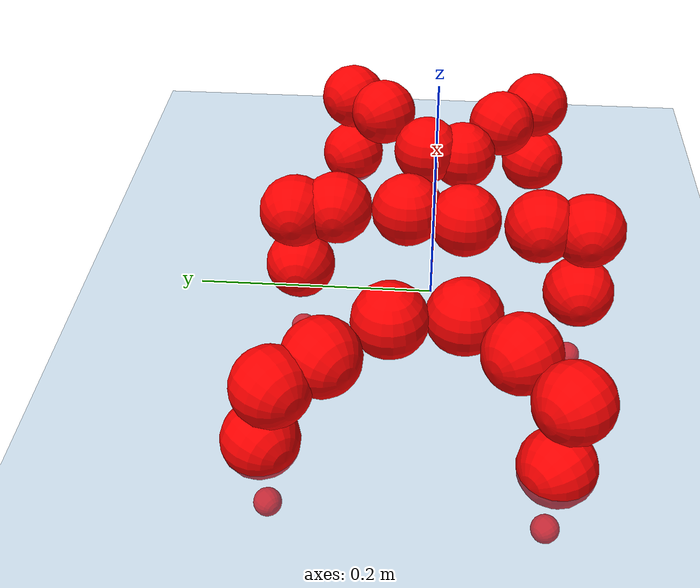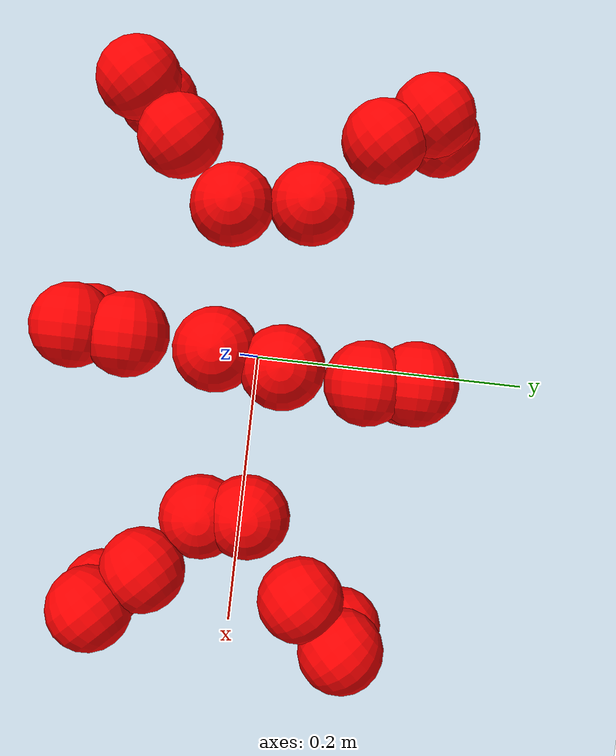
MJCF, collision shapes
<mujoco model="Golem">
  <compiler angle="radian" assetdir="assets" balanceinertia="true" inertiafromgeom="false"/>

  <option timestep="0.005" density="1.2" viscosity="2e-05"/>

  <size nkey="1"/>

  <visual>
    <quality shadowsize="8192"/>
    <map shadowclip="0.5"/>
  </visual>

  <default>
    <default class="/">
      <joint armature="0.01" damping="0.01" frictionloss="0.01"/>
      <geom contype="0" conaffinity="0" group="1" solref="-1000 -80"/>
      <site size="0.01 0.005 0.005" group="5"/>
      <general forcelimited="true" biastype="affine" gainprm="25" biasprm="0 -25 -0.5"/>
      <default class="visual">
        <geom type="mesh" group="2"/>
      </default>
      <default class="collision">
        <geom group="3"/>
      </default>
      <default class="foot">
        <geom size="0.01 0 0" condim="6" group="4" priority="1" solimp="0.015 1 0.01"/>
      </default>
      <default class="reward_collision_sphere">
        <geom group="5" rgba="1 0 0 1"/>
      </default>
    </default>
  </default>

  <asset>
    <texture type="skybox" colorspace="auto" name="//unnamed_texture_0" builtin="gradient" rgb1="0.95 0.95 0.95" rgb2="0.95 0.95 0.95" width="100" height="600"/>
    <texture type="2d" colorspace="auto" name="texplane" builtin="checker" rgb1="0.345 0.575 0.748" rgb2="0.345 0.575 0.748" markrgb="1 1 1" width="512" height="512"/>
    <material name="MatPlane" class="/" texture="texplane" texuniform="true" texrepeat="2 2" specular="0.9"/>
    <mesh name="body" class="/" file="body.stl" scale="0.001 0.001 0.001"/>
    <mesh name="coxa" class="/" file="coxa.stl" scale="0.001 0.001 0.001"/>
    <mesh name="femur" class="/" file="femur.stl" scale="0.001 0.001 0.001"/>
    <mesh name="tibia" class="/" file="tibia.stl" scale="0.001 0.001 0.001"/>
    <mesh name="tarsus" class="/" file="tarsus.stl" scale="0.001 0.001 0.001"/>
  </asset>

  <worldbody>
    <geom name="floor" class="/" size="100 100 0.125" type="plane" group="0" material="MatPlane"/>
    <light name="toplight_shadow" class="/" pos="0 0 5" dir="0.0990148 0.0990148 -0.990148" type="directional" ambient="0.04 0.04 0.04" diffuse="0.55 0.55 0.55" specular="0.12 0.12 0.12"/>
    <light name="toplight_fill" class="/" pos="0 0 5" dir="0.0990148 0.0990148 -0.990148" type="directional" castshadow="false" ambient="0.04 0.04 0.04" diffuse="0.3 0.3 0.3" specular="0.08 0.08 0.08"/>
    <body name="trunk" pos="-5.46234e-05 0.000140542 0.00085869" quat="0.99999 0.00354933 -0.00197408 -0.00202794">
      <inertial pos="0.000458065 -0.00213549 -0.00488367" quat="0.999996 0.000424153 -0.00163462 -0.00240304" mass="1.3572" diaginertia="0.00160905 0.000100762 0.0196538"/>
      <joint name="//unnamed_joint_0" type="free"/>
      <geom name="//unnamed_geom_1" class="/" pos="0 0 0.0732878" quat="1 0 0 0" type="mesh" rgba="0.9 0.9 0.9 1" mesh="body"/>
      <site name="imu" class="/" pos="0.0490817 0.0152302 0.118857" size="0.00744627"/>
      <camera name="track" class="/" pos="0 -0.790703 0" quat="0.707107 0.707107 0 0" mode="trackcom"/>
      <camera name="ego_camera" class="/" pos="0.0901429 0 0.114512" quat="-0.5 -0.5 0.5 0.5"/>
      <body name="coxa_RR" pos="-0.118019 -0.0409346 0.0670965" quat="0.379069 0.000913463 0.0019331 -0.925366">
        <inertial pos="0.00112807 -0.00192096 -0.00528613" quat="0.999813 0.00291818 0.018102 0.00609263" mass="0.0755476" diaginertia="0.00149212 9.14008e-05 0.0178698"/>
        <joint name="coxa_joint_RR" class="/" pos="0 0 0" axis="0.00905843 0.0068043 -0.999936" range="-3.02936 3.28778" armature="0.00721948" damping="0.00628655" frictionloss="0.00625984"/>
        <geom name="//unnamed_geom_2" class="/" type="mesh" rgba="0.2 0.2 0.2 1" mesh="coxa"/>
        <geom name="//unnamed_geom_3" class="reward_collision_sphere" size="0.0297851" pos="-0.0208022 0 0"/>
        <body name="femur_RR" pos="0.0376408 -0.000826225 0.00681862" quat="0.499966 -0.499439 0.500138 0.500456">
          <inertial pos="0.000717675 -0.00067937 -0.000853248" quat="0.999942 0.00918498 -0.00467899 -0.00313067" mass="0.0847754" diaginertia="0.00156697 9.37014e-05 0.0196969"/>
          <joint name="femur_joint_RR" class="/" pos="0 0 0" axis="-0.000750293 -0.0094525 -0.999955" stiffness="0.000956654" range="-3.28666 3.17542" armature="0.00996872" damping="0.017634" frictionloss="0.00741618"/>
          <geom name="//unnamed_geom_4" class="/" type="mesh" rgba="0.9 0.9 0.9 1" mesh="femur"/>
          <geom name="//unnamed_geom_5" class="reward_collision_sphere" size="0.0297851"/>
          <body name="tibia_RR" pos="0.00572084 -0.0512898 -0.00216277" quat="0.00219682 0.999997 -0.000681621 -0.000616415">
            <inertial pos="-0.00583065 -0.00277934 -0.000975966" quat="0.999942 0.00988069 0.00419236 -0.00101186" mass="0.0768439" diaginertia="0.00161118 9.68338e-05 0.0213095"/>
            <joint name="tibia_joint_RR" class="/" pos="0 0 0" axis="0.0276372 0.0271216 0.99925" range="-3.29515 3.17666" armature="0.0093812" damping="0.0283045" frictionloss="0.0068011"/>
            <geom name="//unnamed_geom_6" class="/" type="mesh" rgba="0.2 0.2 0.2 1" mesh="tibia"/>
            <geom name="//unnamed_geom_7" class="reward_collision_sphere" size="0.0297851"/>
            <body name="tarsus_RR" pos="0.0668792 -0.00176668 0.00339375" quat="1 0.000149077 -7.47542e-05 0.000272185">
              <inertial pos="0.0453023 0.000400651 0.00214641" quat="0.501712 0.494082 0.505944 0.498186" mass="0.0772042" diaginertia="0.00150881 9.68882e-05 0.0182197"/>
              <joint name="tarsus_joint_RR" class="/" pos="0 0 0" axis="0.00279823 -0.0305452 0.999529" range="-3.10252 3.10318" armature="0.00701887" damping="0" frictionloss="0.00800016"/>
              <geom name="//unnamed_geom_8" class="/" type="mesh" rgba="0.9 0.9 0.9 1" mesh="tarsus"/>
              <geom name="foot_1" class="foot" size="0.0073535" pos="0.0776616 0 0" quat="0 -0.707107 0 0.707107"/>
              <geom name="//unnamed_geom_10" class="reward_collision_sphere" size="0.0297851"/>
              <geom name="//unnamed_geom_11" class="reward_collision_sphere" size="0.0111694" pos="0.0745413 0 0"/>
              <site name="foot_1" class="foot" pos="0.0776616 0 0" quat="0 -0.707107 0 0.707107" size="0.00744627"/>
            </body>
          </body>
        </body>
      </body>
      <body name="coxa_RM" pos="-0.00164482 -0.0458784 0.0793679" quat="0.706231 0.00326366 0.00118058 -0.707973">
        <inertial pos="-0.00170481 0.00667386 -0.00038405" quat="0.999942 0.00842366 0.0062307 -0.00254163" mass="0.0889802" diaginertia="0.00175274 9.36305e-05 0.0191699"/>
        <joint name="coxa_joint_RM" class="/" pos="0 0 0" axis="-0.0268019 0.0193811 -0.999453" range="-3.14009 3.02001" armature="0.0044977" damping="0.032242" frictionloss="0.00914269"/>
        <geom name="//unnamed_geom_12" class="/" type="mesh" rgba="0.2 0.2 0.2 1" mesh="coxa"/>
        <geom name="//unnamed_geom_13" class="reward_collision_sphere" size="0.0297851" pos="-0.0208022 0 0"/>
        <body name="femur_RM" pos="0.0405824 -0.00303942 0.000511344" quat="0.500092 -0.500255 0.500086 0.499567">
          <inertial pos="-0.00368692 -0.000123808 0.00150331" quat="0.99999 0.00123974 -0.0030582 -0.0029526" mass="0.0760199" diaginertia="0.00165782 9.20848e-05 0.0187961"/>
          <joint name="femur_joint_RM" class="/" pos="0 0 0" axis="0.00137491 0.000719893 -0.999999" range="-3.09672 3.10153" armature="0.00686967" damping="0" frictionloss="0.00591437"/>
          <geom name="//unnamed_geom_14" class="/" type="mesh" rgba="0.9 0.9 0.9 1" mesh="femur"/>
          <geom name="//unnamed_geom_15" class="reward_collision_sphere" size="0.0297851"/>
          <body name="tibia_RM" pos="0.000346597 -0.0378819 -0.00204186" quat="-0.00034896 0.999999 0.000542846 -0.000821485">
            <inertial pos="-0.000838968 -0.00161248 0.00685747" quat="0.999501 -0.0116746 0.0284743 0.00706547" mass="0.0821556" diaginertia="0.0014899 0.000101286 0.0185993"/>
            <joint name="tibia_joint_RM" class="/" pos="0 0 0" axis="-0.00214085 -0.00013723 0.999998" range="-3.1111 3.1646" armature="0.00506143" damping="0" frictionloss="0.00423309"/>
            <geom name="//unnamed_geom_16" class="/" type="mesh" rgba="0.2 0.2 0.2 1" mesh="tibia"/>
            <geom name="//unnamed_geom_17" class="reward_collision_sphere" size="0.0297851"/>
            <body name="tarsus_RM" pos="0.06144 -0.000275054 0.00387106" quat="1 -0.00032546 0.000164018 -0.000144275">
              <inertial pos="0.0375082 0.000351977 -0.00113687" quat="0.498661 0.501208 0.485077 0.514614" mass="0.0836199" diaginertia="0.00155714 9.46867e-05 0.0205694"/>
              <joint name="tarsus_joint_RM" class="/" pos="0 0 0" axis="-0.00135597 -0.00117197 0.999998" range="-3.29607 3.09589" armature="0.00406626" damping="0" frictionloss="0.00821145"/>
              <geom name="//unnamed_geom_18" class="/" type="mesh" rgba="0.9 0.9 0.9 1" mesh="tarsus"/>
              <geom name="foot_2" class="foot" size="0.00536204" pos="0.0776616 0 0" quat="0 -0.707107 0 0.707107"/>
              <geom name="//unnamed_geom_20" class="reward_collision_sphere" size="0.0297851"/>
              <geom name="//unnamed_geom_21" class="reward_collision_sphere" size="0.0111694" pos="0.0745413 0 0"/>
              <site name="foot_2" class="foot" pos="0.0776616 0 0" quat="0 -0.707107 0 0.707107" size="0.00744627"/>
            </body>
          </body>
        </body>
      </body>
      <body name="coxa_RF" pos="0.130059 -0.0373484 0.0649725" quat="0.923705 -0.000407843 -0.000237101 -0.383105">
        <inertial pos="0.00497081 0.00928225 -0.00365628" quat="0.99974 -0.0105406 0.0202365 0.000304183" mass="0.0825634" diaginertia="0.00151764 9.83974e-05 0.0197397"/>
        <joint name="coxa_joint_RF" class="/" pos="0 0 0" axis="0.00100688 0.00188401 -0.999998" range="-3.11233 2.98905" armature="0.00861881" damping="0.00971838" frictionloss="0.00671262"/>
        <geom name="//unnamed_geom_22" class="/" type="mesh" rgba="0.2 0.2 0.2 1" mesh="coxa"/>
        <geom name="//unnamed_geom_23" class="reward_collision_sphere" size="0.0297851" pos="-0.0208022 0 0"/>
        <body name="femur_RF" pos="0.0320006 0.00332129 0.0108277" quat="0.502093 -0.499412 0.497412 0.50107">
          <inertial pos="0.000549451 0.00468759 -0.00735266" quat="0.999226 0.00915698 -0.0314333 0.021807" mass="0.0807355" diaginertia="0.00165343 0.000104894 0.0191596"/>
          <joint name="femur_joint_RF" class="/" pos="0 0 0" axis="-0.000358398 -0.00216894 -0.999998" stiffness="0.00484265" range="-3.22494 3.14105" armature="0.00766507" damping="0.016779" frictionloss="0.0101413"/>
          <geom name="//unnamed_geom_24" class="/" type="mesh" rgba="0.9 0.9 0.9 1" mesh="femur"/>
          <geom name="//unnamed_geom_25" class="reward_collision_sphere" size="0.0297851"/>
          <body name="tibia_RF" pos="-0.00379255 -0.0440783 -0.00219217" quat="-0.001827 0.999997 0.001488 4.47635e-05">
            <inertial pos="-0.00179131 -0.00261217 0.000819893" quat="0.999789 0.0182151 0.00384476 -0.00873871" mass="0.0811066" diaginertia="0.00157105 9.70116e-05 0.0193078"/>
            <joint name="tibia_joint_RF" class="/" pos="0 0 0" axis="-0.0307049 0.0131071 0.999443" range="-3.16222 3.11355" armature="0.00766871" damping="0.0212861" frictionloss="0.00745179"/>
            <geom name="//unnamed_geom_26" class="/" type="mesh" rgba="0.2 0.2 0.2 1" mesh="tibia"/>
            <geom name="//unnamed_geom_27" class="reward_collision_sphere" size="0.0297851"/>
            <body name="tarsus_RF" pos="0.0614913 0.00150432 0.00264008" quat="0.999994 -0.00265671 0.00221213 0.000921822">
              <inertial pos="0.0489191 0.00110558 -0.00893227" quat="0.481487 0.502798 0.499484 0.515636" mass="0.0936538" diaginertia="0.00159537 0.000103419 0.022138"/>
              <joint name="tarsus_joint_RF" class="/" pos="0 0 0" axis="0.0235977 0.031441 0.999227" range="-3.29781 3.15355" armature="0.00753879" damping="0" frictionloss="0.00592608"/>
              <geom name="//unnamed_geom_28" class="/" type="mesh" rgba="0.9 0.9 0.9 1" mesh="tarsus"/>
              <geom name="foot_3" class="foot" size="0.00748094" pos="0.0776616 0 0" quat="0 -0.707107 0 0.707107"/>
              <geom name="//unnamed_geom_30" class="reward_collision_sphere" size="0.0297851"/>
              <geom name="//unnamed_geom_31" class="reward_collision_sphere" size="0.0111694" pos="0.0745413 0 0"/>
              <site name="foot_3" class="foot" pos="0.0776616 0 0" quat="0 -0.707107 0 0.707107" size="0.00744627"/>
            </body>
          </body>
        </body>
      </body>
      <body name="coxa_LR" pos="-0.124755 0.0434233 0.0659827" quat="0.382986 -0.00140587 0.00344399 0.923747">
        <inertial pos="-0.0068774 0.00177009 0.00345229" quat="0.999657 -0.00234857 -0.0191322 0.017719" mass="0.0813883" diaginertia="0.00159984 9.53604e-05 0.0194396"/>
        <joint name="coxa_joint_LR" class="/" pos="0 0 0" axis="-0.000767083 0.0389169 -0.999242" range="-3.16419 3.18155" armature="0.00780703" damping="0.0439123" frictionloss="0.0069283"/>
        <geom name="//unnamed_geom_32" class="/" type="mesh" rgba="0.2 0.2 0.2 1" mesh="coxa"/>
        <geom name="//unnamed_geom_33" class="reward_collision_sphere" size="0.0297851" pos="-0.0208022 0 0"/>
        <body name="femur_LR" pos="0.044887 0.00230063 0.00628966" quat="0.501889 -0.501515 0.498685 0.497899">
          <inertial pos="-0.000478819 -0.00184582 0.00280777" quat="0.999974 -0.00230265 -0.00345646 0.00595795" mass="0.0786031" diaginertia="0.00155655 9.45329e-05 0.0187261"/>
          <joint name="femur_joint_LR" class="/" pos="0 0 0" axis="0.00162703 0.00103582 0.999998" stiffness="0.00674124" range="-3.1791 2.95512" armature="0.00641228" damping="0.00716924" frictionloss="0.00421486"/>
          <geom name="//unnamed_geom_34" class="/" type="mesh" rgba="0.9 0.9 0.9 1" mesh="femur"/>
          <geom name="//unnamed_geom_35" class="reward_collision_sphere" size="0.0297851"/>
          <body name="tibia_LR" pos="0.00766879 -0.0396047 -0.00620086" quat="0.00117598 0.999999 9.33551e-05 -4.6763e-05">
            <inertial pos="0.000543926 -0.00140193 0.00182784" quat="0.999996 0.00216071 -0.000497138 0.00184655" mass="0.0835705" diaginertia="0.00157545 8.94842e-05 0.0194096"/>
            <joint name="tibia_joint_LR" class="/" pos="0 0 0" axis="0.0034642 -0.00175807 -0.999992" range="-3.13294 3.27293" armature="0.0105211" damping="0" frictionloss="0.00834037"/>
            <geom name="//unnamed_geom_36" class="/" type="mesh" rgba="0.2 0.2 0.2 1" mesh="tibia"/>
            <geom name="//unnamed_geom_37" class="reward_collision_sphere" size="0.0297851"/>
            <body name="tarsus_LR" pos="0.0583021 0.00665558 0.0100797" quat="1 3.44292e-05 0.000106478 5.28923e-05">
              <inertial pos="0.0444098 0.0017599 -0.00131467" quat="0.503136 0.498005 0.493104 0.505661" mass="0.084115" diaginertia="0.00163857 9.90709e-05 0.0204028"/>
              <joint name="tarsus_joint_LR" class="/" pos="0 0 0" axis="-0.00189589 -0.00238045 -0.999995" stiffness="0.0128507" range="-3.28819 3.14423" armature="0.00727997" damping="0.0522469" frictionloss="0.00813159"/>
              <geom name="//unnamed_geom_38" class="/" type="mesh" rgba="0.9 0.9 0.9 1" mesh="tarsus"/>
              <geom name="foot_4" class="foot" size="0.00925416" pos="0.0776616 0 0" quat="0.707107 0 -0.707107 0"/>
              <geom name="//unnamed_geom_40" class="reward_collision_sphere" size="0.0297851"/>
              <geom name="//unnamed_geom_41" class="reward_collision_sphere" size="0.0111694" pos="0.0745413 0 0"/>
              <site name="foot_4" class="foot" pos="0.0776616 0 0" quat="0.707107 0 -0.707107 0" size="0.00744627"/>
            </body>
          </body>
        </body>
      </body>
      <body name="coxa_LM" pos="0.00564405 0.042796 0.0820944" quat="0.707451 0.00411554 -0.00200154 0.706747">
        <inertial pos="0.00108548 0.000181466 -0.00330084" quat="0.999946 -0.000161329 0.00632286 0.00825204" mass="0.0733079" diaginertia="0.00126545 8.55249e-05 0.0170672"/>
        <joint name="coxa_joint_LM" class="/" pos="0 0 0" axis="0.000487851 -0.00170634 -0.999998" range="-3.02316 3.11236" armature="0.0092083" damping="0" frictionloss="0.00543764"/>
        <geom name="//unnamed_geom_42" class="/" type="mesh" rgba="0.2 0.2 0.2 1" mesh="coxa"/>
        <geom name="//unnamed_geom_43" class="reward_collision_sphere" size="0.0297851" pos="-0.0208022 0 0"/>
        <body name="femur_LM" pos="0.0378705 -0.00394085 -0.00464927" quat="0.49999 -0.500019 0.499874 0.500117">
          <inertial pos="-0.000490091 0.00456727 0.000119037" quat="0.999876 0.00880722 0.0107114 -0.00747814" mass="0.0964329" diaginertia="0.00176432 0.000109006 0.022267"/>
          <joint name="femur_joint_LM" class="/" pos="0 0 0" axis="0.00623884 -0.00499411 0.999968" range="-3.12194 3.09621" armature="0.00833606" damping="0" frictionloss="0.00610545"/>
          <geom name="//unnamed_geom_44" class="/" type="mesh" rgba="0.9 0.9 0.9 1" mesh="femur"/>
          <geom name="//unnamed_geom_45" class="reward_collision_sphere" size="0.0297851"/>
          <body name="tibia_LM" pos="0.00294616 -0.033953 0.00341246" quat="0.000564328 1 -8.29386e-05 -0.000671426">
            <inertial pos="0.00801178 -0.00936266 0.0019348" quat="1 -0.000194175 -0.000502138 -0.000244664" mass="0.0783131" diaginertia="0.00174854 0.000100284 0.0205549"/>
            <joint name="tibia_joint_LM" class="/" pos="0 0 0" axis="-0.00156028 -0.0011584 -0.999998" stiffness="0.00476018" range="-3.23443 3.14856" armature="0.00709544" damping="0" frictionloss="0.00848495"/>
            <geom name="//unnamed_geom_46" class="/" type="mesh" rgba="0.2 0.2 0.2 1" mesh="tibia"/>
            <geom name="//unnamed_geom_47" class="reward_collision_sphere" size="0.0297851"/>
            <body name="tarsus_LM" pos="0.0584372 -0.00186294 0.00272262" quat="0.999999 -0.00114369 0.000169725 -0.000165904">
              <inertial pos="0.04269 -0.000256432 4.63376e-05" quat="0.493929 0.499474 0.508204 0.498285" mass="0.0880726" diaginertia="0.0016804 9.90251e-05 0.0186668"/>
              <joint name="tarsus_joint_LM" class="/" pos="0 0 0" axis="0.0161246 0.02313 -0.999602" range="-3.13286 3.23072" armature="0.00734285" damping="0" frictionloss="0.00956943"/>
              <geom name="//unnamed_geom_48" class="/" type="mesh" rgba="0.9 0.9 0.9 1" mesh="tarsus"/>
              <geom name="foot_5" class="foot" size="0.00801246" pos="0.0776616 0 0" quat="0.707107 0 -0.707107 0"/>
              <geom name="//unnamed_geom_50" class="reward_collision_sphere" size="0.0297851"/>
              <geom name="//unnamed_geom_51" class="reward_collision_sphere" size="0.0111694" pos="0.0745413 0 0"/>
              <site name="foot_5" class="foot" pos="0.0776616 0 0" quat="0.707107 0 -0.707107 0" size="0.00744627"/>
            </body>
          </body>
        </body>
      </body>
      <body name="coxa_LF" pos="0.125819 0.0244838 0.0716209" quat="0.923487 0.000219349 -0.00013646 0.383631">
        <inertial pos="-0.0023214 0.00454115 -0.000967924" quat="0.999991 -0.00283932 -6.62371e-05 0.00304912" mass="0.0897236" diaginertia="0.00172044 0.000110881 0.0209879"/>
        <joint name="coxa_joint_LF" class="/" pos="0 0 0" axis="-0.000866287 0.00942091 -0.999955" stiffness="0.0120995" range="-3.05619 3.14814" armature="0.00749419" damping="0.0169993" frictionloss="0.00658705"/>
        <geom name="//unnamed_geom_52" class="/" type="mesh" rgba="0.2 0.2 0.2 1" mesh="coxa"/>
        <geom name="//unnamed_geom_53" class="reward_collision_sphere" size="0.0297851" pos="-0.0208022 0 0"/>
        <body name="femur_LF" pos="0.0457857 -0.00573913 0.00675734" quat="0.498535 -0.500782 0.500303 0.500377">
          <inertial pos="-0.00189561 0.000126296 -0.00234921" quat="0.99902 -0.0113002 0.0417606 -0.00930198" mass="0.0819251" diaginertia="0.00158161 0.000104149 0.020261"/>
          <joint name="femur_joint_LF" class="/" pos="0 0 0" axis="-0.00401029 -0.0127644 0.99991" range="-3.0981 3.17241" armature="0.00666199" damping="0" frictionloss="0.0108939"/>
          <geom name="//unnamed_geom_54" class="/" type="mesh" rgba="0.9 0.9 0.9 1" mesh="femur"/>
          <geom name="//unnamed_geom_55" class="reward_collision_sphere" size="0.0297851"/>
          <body name="tibia_LF" pos="0.00335443 -0.0452203 -0.000902417" quat="-0.000303471 1 -0.000320193 -0.000320957">
            <inertial pos="0.000119268 -0.000392206 0.00219867" quat="0.999943 -0.0102563 0.0030705 0.000408386" mass="0.078561" diaginertia="0.0015966 9.9046e-05 0.020254"/>
            <joint name="tibia_joint_LF" class="/" pos="0 0 0" axis="-0.0102275 0.00716412 -0.999922" range="-2.96903 3.18167" armature="0.00643876" damping="0" frictionloss="0.00892369"/>
            <geom name="//unnamed_geom_56" class="/" type="mesh" rgba="0.2 0.2 0.2 1" mesh="tibia"/>
            <geom name="//unnamed_geom_57" class="reward_collision_sphere" size="0.0297851"/>
            <body name="tarsus_LF" pos="0.0629311 -0.000780763 -0.00218486" quat="1 8.5965e-05 -0.000877751 0.000421378">
              <inertial pos="0.0430789 0.000274947 -0.00827298" quat="0.499965 0.499959 0.50004 0.500037" mass="0.0819482" diaginertia="0.00162087 9.79908e-05 0.0204145"/>
              <joint name="tarsus_joint_LF" class="/" pos="0 0 0" axis="0.0035609 0.0250865 -0.999679" stiffness="0.00572865" range="-3.1284 3.07705" armature="0.00739735" damping="0.0507542" frictionloss="0.00817229"/>
              <geom name="//unnamed_geom_58" class="/" type="mesh" rgba="0.9 0.9 0.9 1" mesh="tarsus"/>
              <geom name="foot_6" class="foot" size="0.00704276" pos="0.0776616 0 0" quat="0.707107 0 -0.707107 0"/>
              <geom name="//unnamed_geom_60" class="reward_collision_sphere" size="0.0297851"/>
              <geom name="//unnamed_geom_61" class="reward_collision_sphere" size="0.0111694" pos="0.0745413 0 0"/>
              <site name="foot_6" class="foot" pos="0.0776616 0 0" quat="0.707107 0 -0.707107 0" size="0.00744627"/>
            </body>
          </body>
        </body>
      </body>
    </body>
  </worldbody>

  <contact>
    <pair class="/" geom1="floor" geom2="foot_1" name="//unnamed_contact_0"/>
    <pair class="/" geom1="floor" geom2="foot_2" name="//unnamed_contact_1"/>
    <pair class="/" geom1="floor" geom2="foot_3" name="//unnamed_contact_2"/>
    <pair class="/" geom1="floor" geom2="foot_4" name="//unnamed_contact_3"/>
    <pair class="/" geom1="floor" geom2="foot_5" name="//unnamed_contact_4"/>
    <pair class="/" geom1="floor" geom2="foot_6" name="//unnamed_contact_5"/>
  </contact>

  <actuator>
    <general name="coxa_joint_RR" class="/" joint="coxa_joint_RR" forcerange="-4.50153 4.50153" gainprm="22.5739" biasprm="0 -22.5739 -0.448181"/>
    <general name="femur_joint_RR" class="/" joint="femur_joint_RR" forcerange="-5.17101 5.17101" gainprm="22.5739" biasprm="0 -22.5739 -0.448181"/>
    <general name="tibia_joint_RR" class="/" joint="tibia_joint_RR" forcerange="-5.2633 5.2633" gainprm="22.5739" biasprm="0 -22.5739 -0.448181"/>
    <general name="tarsus_joint_RR" class="/" joint="tarsus_joint_RR" forcerange="-5.72616 5.72616" gainprm="22.5739" biasprm="0 -22.5739 -0.448181"/>
    <general name="coxa_joint_RM" class="/" joint="coxa_joint_RM" forcerange="-4.46837 4.46837" gainprm="22.5739" biasprm="0 -22.5739 -0.448181"/>
    <general name="femur_joint_RM" class="/" joint="femur_joint_RM" forcerange="-4.21889 4.21889" gainprm="22.5739" biasprm="0 -22.5739 -0.448181"/>
    <general name="tibia_joint_RM" class="/" joint="tibia_joint_RM" forcerange="-5.7448 5.7448" gainprm="22.5739" biasprm="0 -22.5739 -0.448181"/>
    <general name="tarsus_joint_RM" class="/" joint="tarsus_joint_RM" forcerange="-3.6908 3.6908" gainprm="22.5739" biasprm="0 -22.5739 -0.448181"/>
    <general name="coxa_joint_RF" class="/" joint="coxa_joint_RF" forcerange="-3.9798 3.9798" gainprm="22.5739" biasprm="0 -22.5739 -0.448181"/>
    <general name="femur_joint_RF" class="/" joint="femur_joint_RF" forcerange="-6.9064 6.9064" gainprm="22.5739" biasprm="0 -22.5739 -0.448181"/>
    <general name="tibia_joint_RF" class="/" joint="tibia_joint_RF" forcerange="-5.66553 5.66553" gainprm="22.5739" biasprm="0 -22.5739 -0.448181"/>
    <general name="tarsus_joint_RF" class="/" joint="tarsus_joint_RF" forcerange="-5.86431 5.86431" gainprm="22.5739" biasprm="0 -22.5739 -0.448181"/>
    <general name="coxa_joint_LR" class="/" joint="coxa_joint_LR" forcerange="-5.0232 5.0232" gainprm="22.5739" biasprm="0 -22.5739 -0.448181"/>
    <general name="femur_joint_LR" class="/" joint="femur_joint_LR" forcerange="-6.2962 6.2962" gainprm="22.5739" biasprm="0 -22.5739 -0.448181"/>
    <general name="tibia_joint_LR" class="/" joint="tibia_joint_LR" forcerange="-5.70426 5.70426" gainprm="22.5739" biasprm="0 -22.5739 -0.448181"/>
    <general name="tarsus_joint_LR" class="/" joint="tarsus_joint_LR" forcerange="-5.03384 5.03384" gainprm="22.5739" biasprm="0 -22.5739 -0.448181"/>
    <general name="coxa_joint_LM" class="/" joint="coxa_joint_LM" forcerange="-5.49591 5.49591" gainprm="22.5739" biasprm="0 -22.5739 -0.448181"/>
    <general name="femur_joint_LM" class="/" joint="femur_joint_LM" forcerange="-5.42968 5.42968" gainprm="22.5739" biasprm="0 -22.5739 -0.448181"/>
    <general name="tibia_joint_LM" class="/" joint="tibia_joint_LM" forcerange="-7.16263 7.16263" gainprm="22.5739" biasprm="0 -22.5739 -0.448181"/>
    <general name="tarsus_joint_LM" class="/" joint="tarsus_joint_LM" forcerange="-5.3992 5.3992" gainprm="22.5739" biasprm="0 -22.5739 -0.448181"/>
    <general name="coxa_joint_LF" class="/" joint="coxa_joint_LF" forcerange="-4.19725 4.19725" gainprm="22.5739" biasprm="0 -22.5739 -0.448181"/>
    <general name="femur_joint_LF" class="/" joint="femur_joint_LF" forcerange="-4.12495 4.12495" gainprm="22.5739" biasprm="0 -22.5739 -0.448181"/>
    <general name="tibia_joint_LF" class="/" joint="tibia_joint_LF" forcerange="-5.16027 5.16027" gainprm="22.5739" biasprm="0 -22.5739 -0.448181"/>
    <general name="tarsus_joint_LF" class="/" joint="tarsus_joint_LF" forcerange="-5.33636 5.33636" gainprm="22.5739" biasprm="0 -22.5739 -0.448181"/>
  </actuator>

  <sensor>
    <gyro site="imu" name="imu_angular_velocity"/>
    <velocimeter site="imu" name="imu_linear_velocity"/>
    <framelinvel objtype="site" objname="foot_1" name="foot_1_global_linear_velocity"/>
    <framelinvel objtype="site" objname="foot_2" name="foot_2_global_linear_velocity"/>
    <framelinvel objtype="site" objname="foot_3" name="foot_3_global_linear_velocity"/>
    <framelinvel objtype="site" objname="foot_4" name="foot_4_global_linear_velocity"/>
    <framelinvel objtype="site" objname="foot_5" name="foot_5_global_linear_velocity"/>
    <framelinvel objtype="site" objname="foot_6" name="foot_6_global_linear_velocity"/>
  </sensor>

  <keyframe>
    <key name="home" qpos="0 0 0.1457 1 0 0 0 0 0 0 0 0 0 0 0 0 0 0 0 0 0 0 0 0 0 0 0 0 0 0 0"/>
  </keyframe>
</mujoco>
